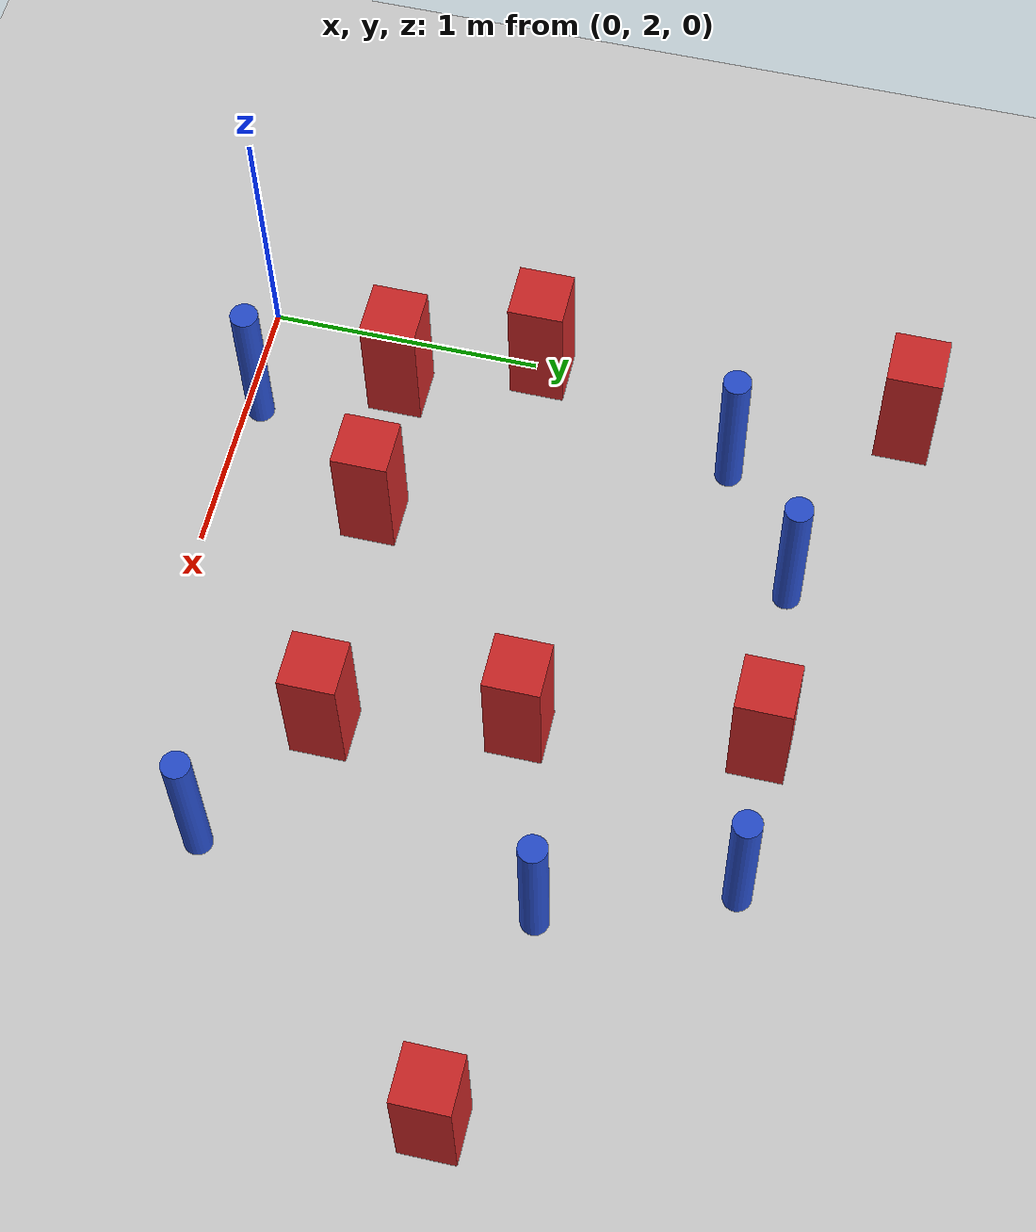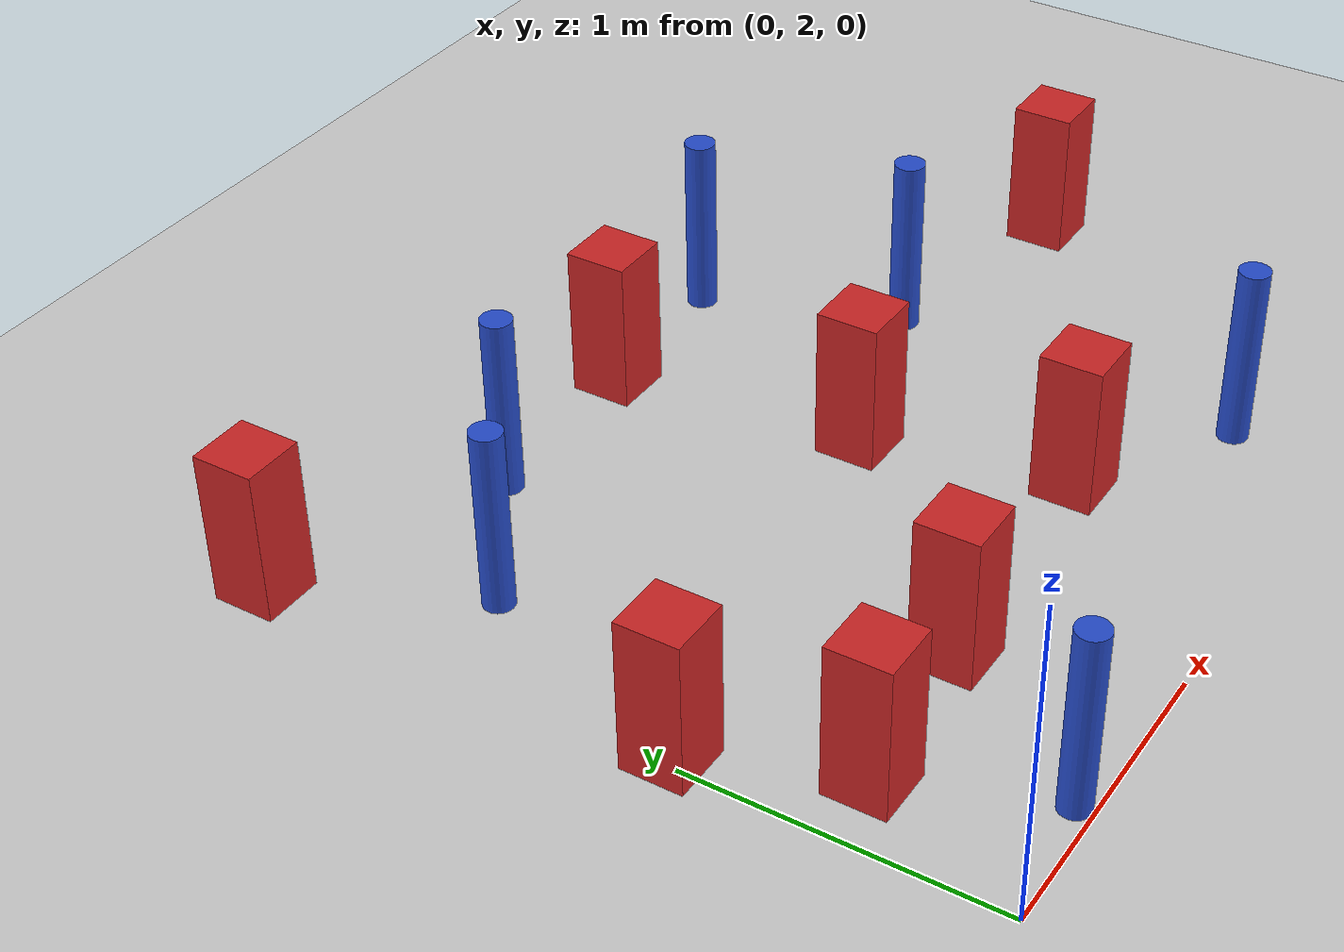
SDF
<sdf version="1.6">
 <world name="default">
  <model name="ground_plane">
   <static>1</static>
   <link name="link">
    <collision name="collision">
     <geometry><plane><normal>0 0 1</normal><size>100 100</size></plane></geometry>
     <surface><friction><ode><mu>100</mu><mu2>50</mu2></ode></friction></surface>
    </collision>
    <visual name="visual">
     <cast_shadows>0</cast_shadows>
     <geometry><plane><normal>0 0 1</normal><size>100 100</size></plane></geometry>
     <material>
      <ambient>1.0 1.0 1.0 1.0</ambient>
      <diffuse>0.8 0.8 0.8 1.0</diffuse>
      <specular>0.01 0.01 0.01 1.000000</specular>
     </material>
    </visual>
   </link>
  </model>
  <model name="square_post_obstacle2">
   <static>true</static>
   <pose>0.2190282874 2.5391222892 8.22691968438e-08 7.2212513382e-06 -7.54495500217e-07 2.29674213826e-05</pose>
   <link name="link">
    <pose>0 0 0.25 0 -0 0</pose>
    <inertial>
     <mass>100</mass>
     <inertia>
      <ixx>0.166667</ixx>
      <ixy>0</ixy>
      <ixz>0</ixz>
      <iyy>0.166667</iyy>
      <iyz>0</iyz>
      <izz>0.166667</izz>
     </inertia>
    </inertial>
    <collision name="collision"><geometry><box><size>.2 .2 .5</size></box></geometry></collision>
    <visual name="visual">
     <geometry><box><size>.2 .2 .5</size></box></geometry>
     <material>
      <script><name>Gazebo/Red</name><uri>file://media/materials/scripts/gazebo.material</uri></script>
     </material>
    </visual>
   </link>
  </model>
  <model name="pole_obstacle17">
   <static>true</static>
   <pose>0.307623092809 3.79545921827 2.88873142074e-08 -9.90536689663e-09 4.60219948993e-07 -1.20965994959e-07</pose>
   <link name="link">
    <pose>0 0 0.3 0 -0 0</pose>
    <inertial>
     <mass>1</mass>
     <inertia><ixx>0.145833</ixx><ixy>0</ixy><ixz>0</ixz><iyy>0.145833</iyy><iyz>0</iyz><izz>0.125</izz></inertia>
    </inertial>
    <collision name="collision">
     <geometry><cylinder><radius>0.05</radius><length>.6</length></cylinder></geometry>
    </collision>
    <visual name="visual">
     <geometry><cylinder><radius>0.05</radius><length>.6</length></cylinder></geometry>
     <material>
      <script><name>Gazebo/Blue</name><uri>file://media/materials/scripts/gazebo.material</uri></script>
     </material>
    </visual>
   </link>
  </model>
  <model name="pole_obstacle36">
   <static>true</static>
   <pose>2.14085963307 2.33548667248 2.88873142074e-08 -9.90536690232e-09 4.6021994898e-07 -1.20965994968e-07</pose>
   <link name="link">
    <pose>0 0 0.3 0 -0 0</pose>
    <inertial>
     <mass>1</mass>
     <inertia><ixx>0.145833</ixx><ixy>0</ixy><ixz>0</ixz><iyy>0.145833</iyy><iyz>0</iyz><izz>0.125</izz></inertia>
    </inertial>
    <collision name="collision">
     <geometry><cylinder><radius>0.05</radius><length>.6</length></cylinder></geometry>
    </collision>
    <visual name="visual">
     <geometry><cylinder><radius>0.05</radius><length>.6</length></cylinder></geometry>
     <material>
      <script><name>Gazebo/Blue</name><uri>file://media/materials/scripts/gazebo.material</uri></script>
     </material>
    </visual>
   </link>
  </model>
  <model name="pole_obstacle43">
   <static>true</static>
   <pose>0.763622266469 4.09649743446 2.88873142074e-08 -9.90536689661e-09 4.60219948993e-07 -1.20965994957e-07</pose>
   <link name="link">
    <pose>0 0 0.3 0 -0 0</pose>
    <inertial>
     <mass>1</mass>
     <inertia><ixx>0.145833</ixx><ixy>0</ixy><ixz>0</ixz><iyy>0.145833</iyy><iyz>0</iyz><izz>0.125</izz></inertia>
    </inertial>
    <collision name="collision">
     <geometry><cylinder><radius>0.05</radius><length>.6</length></cylinder></geometry>
    </collision>
    <visual name="visual">
     <geometry><cylinder><radius>0.05</radius><length>.6</length></cylinder></geometry>
     <material>
      <script><name>Gazebo/Blue</name><uri>file://media/materials/scripts/gazebo.material</uri></script>
     </material>
    </visual>
   </link>
  </model>
  <model name="square_post_obstacle50">
   <static>true</static>
   <pose>0.771809701009 2.58434858836 8.22691968438e-08 7.2212513382e-06 -7.54495500217e-07 2.29674213826e-05</pose>
   <link name="link">
    <pose>0 0 0.25 0 -0 0</pose>
    <inertial>
     <mass>100</mass>
     <inertia>
      <ixx>0.166667</ixx>
      <ixy>0</ixy>
      <ixz>0</ixz>
      <iyy>0.166667</iyy>
      <iyz>0</iyz>
      <izz>0.166667</izz>
     </inertia>
    </inertial>
    <collision name="collision"><geometry><box><size>.2 .2 .5</size></box></geometry></collision>
    <visual name="visual">
     <geometry><box><size>.2 .2 .5</size></box></geometry>
     <material>
      <script><name>Gazebo/Red</name><uri>file://media/materials/scripts/gazebo.material</uri></script>
     </material>
    </visual>
   </link>
  </model>
  <model name="pole_obstacle76">
   <static>true</static>
   <pose>2.16894916394 3.50908128852 2.88873142074e-08 -9.90536690232e-09 4.6021994898e-07 -1.20965994968e-07</pose>
   <link name="link">
    <pose>0 0 0.3 0 -0 0</pose>
    <inertial>
     <mass>1</mass>
     <inertia><ixx>0.145833</ixx><ixy>0</ixy><ixz>0</ixz><iyy>0.145833</iyy><iyz>0</iyz><izz>0.125</izz></inertia>
    </inertial>
    <collision name="collision">
     <geometry><cylinder><radius>0.05</radius><length>.6</length></cylinder></geometry>
    </collision>
    <visual name="visual">
     <geometry><cylinder><radius>0.05</radius><length>.6</length></cylinder></geometry>
     <material>
      <script><name>Gazebo/Blue</name><uri>file://media/materials/scripts/gazebo.material</uri></script>
     </material>
    </visual>
   </link>
  </model>
  <model name="square_post_obstacle75">
   <static>true</static>
   <pose>0.0272648362497 3.03281981452 8.22691968438e-08 7.2212513382e-06 -7.54495500217e-07 2.29674213826e-05</pose>
   <link name="link">
    <pose>0 0 0.25 0 -0 0</pose>
    <inertial>
     <mass>100</mass>
     <inertia>
      <ixx>0.166667</ixx>
      <ixy>0</ixy>
      <ixz>0</ixz>
      <iyy>0.166667</iyy>
      <iyz>0</iyz>
      <izz>0.166667</izz>
     </inertia>
    </inertial>
    <collision name="collision"><geometry><box><size>.2 .2 .5</size></box></geometry></collision>
    <visual name="visual">
     <geometry><box><size>.2 .2 .5</size></box></geometry>
     <material>
      <script><name>Gazebo/Red</name><uri>file://media/materials/scripts/gazebo.material</uri></script>
     </material>
    </visual>
   </link>
  </model>
  <model name="pole_obstacle91">
   <static>true</static>
   <pose>1.9350457874 4.14826656379 2.88873142074e-08 -9.90536689852e-09 4.60219948989e-07 -1.2096599496e-07</pose>
   <link name="link">
    <pose>0 0 0.3 0 -0 0</pose>
    <inertial>
     <mass>1</mass>
     <inertia><ixx>0.145833</ixx><ixy>0</ixy><ixz>0</ixz><iyy>0.145833</iyy><iyz>0</iyz><izz>0.125</izz></inertia>
    </inertial>
    <collision name="collision">
     <geometry><cylinder><radius>0.05</radius><length>.6</length></cylinder></geometry>
    </collision>
    <visual name="visual">
     <geometry><cylinder><radius>0.05</radius><length>.6</length></cylinder></geometry>
     <material>
      <script><name>Gazebo/Blue</name><uri>file://media/materials/scripts/gazebo.material</uri></script>
     </material>
    </visual>
   </link>
  </model>
  <model name="square_post_obstacle110">
   <static>true</static>
   <pose>1.49745537469 3.29779844383 8.22691968438e-08 7.2212513382e-06 -7.54495500217e-07 2.29674213826e-05</pose>
   <link name="link">
    <pose>0 0 0.25 0 -0 0</pose>
    <inertial>
     <mass>100</mass>
     <inertia>
      <ixx>0.166667</ixx>
      <ixy>0</ixy>
      <ixz>0</ixz>
      <iyy>0.166667</iyy>
      <iyz>0</iyz>
      <izz>0.166667</izz>
     </inertia>
    </inertial>
    <collision name="collision"><geometry><box><size>.2 .2 .5</size></box></geometry></collision>
    <visual name="visual">
     <geometry><box><size>.2 .2 .5</size></box></geometry>
     <material>
      <script><name>Gazebo/Red</name><uri>file://media/materials/scripts/gazebo.material</uri></script>
     </material>
    </visual>
   </link>
  </model>
  <model name="square_post_obstacle121">
   <static>true</static>
   <pose>0.0058337687307 4.39274328257 8.22691968438e-08 7.2212513382e-06 -7.54495500217e-07 2.29674213826e-05</pose>
   <link name="link">
    <pose>0 0 0.25 0 -0 0</pose>
    <inertial>
     <mass>100</mass>
     <inertia>
      <ixx>0.166667</ixx>
      <ixy>0</ixy>
      <ixz>0</ixz>
      <iyy>0.166667</iyy>
      <iyz>0</iyz>
      <izz>0.166667</izz>
     </inertia>
    </inertial>
    <collision name="collision"><geometry><box><size>.2 .2 .5</size></box></geometry></collision>
    <visual name="visual">
     <geometry><box><size>.2 .2 .5</size></box></geometry>
     <material>
      <script><name>Gazebo/Red</name><uri>file://media/materials/scripts/gazebo.material</uri></script>
     </material>
    </visual>
   </link>
  </model>
  <model name="pole_obstacle150">
   <static>true</static>
   <pose>0.418255800796 2.05549087887 2.88873142074e-08 -9.90536689663e-09 4.60219948993e-07 -1.20965994959e-07</pose>
   <link name="link">
    <pose>0 0 0.3 0 -0 0</pose>
    <inertial>
     <mass>1</mass>
     <inertia><ixx>0.145833</ixx><ixy>0</ixy><ixz>0</ixz><iyy>0.145833</iyy><iyz>0</iyz><izz>0.125</izz></inertia>
    </inertial>
    <collision name="collision">
     <geometry><cylinder><radius>0.05</radius><length>.6</length></cylinder></geometry>
    </collision>
    <visual name="visual">
     <geometry><cylinder><radius>0.05</radius><length>.6</length></cylinder></geometry>
     <material>
      <script><name>Gazebo/Blue</name><uri>file://media/materials/scripts/gazebo.material</uri></script>
     </material>
    </visual>
   </link>
  </model>
  <model name="square_post_obstacle184">
   <static>true</static>
   <pose>1.64008756146 2.64107913585 8.22691968438e-08 7.2212513382e-06 -7.54495500217e-07 2.29674213826e-05</pose>
   <link name="link">
    <pose>0 0 0.25 0 -0 0</pose>
    <inertial>
     <mass>100</mass>
     <inertia>
      <ixx>0.166667</ixx>
      <ixy>0</ixy>
      <ixz>0</ixz>
      <iyy>0.166667</iyy>
      <iyz>0</iyz>
      <izz>0.166667</izz>
     </inertia>
    </inertial>
    <collision name="collision"><geometry><box><size>.2 .2 .5</size></box></geometry></collision>
    <visual name="visual">
     <geometry><box><size>.2 .2 .5</size></box></geometry>
     <material>
      <script><name>Gazebo/Red</name><uri>file://media/materials/scripts/gazebo.material</uri></script>
     </material>
    </visual>
   </link>
  </model>
  <model name="square_post_obstacle188">
   <static>true</static>
   <pose>1.38954900626 4.12025621831 8.22691968438e-08 7.2212513382e-06 -7.54495500217e-07 2.29674213826e-05</pose>
   <link name="link">
    <pose>0 0 0.25 0 -0 0</pose>
    <inertial>
     <mass>100</mass>
     <inertia>
      <ixx>0.166667</ixx>
      <ixy>0</ixy>
      <ixz>0</ixz>
      <iyy>0.166667</iyy>
      <iyz>0</iyz>
      <izz>0.166667</izz>
     </inertia>
    </inertial>
    <collision name="collision"><geometry><box><size>.2 .2 .5</size></box></geometry></collision>
    <visual name="visual">
     <geometry><box><size>.2 .2 .5</size></box></geometry>
     <material>
      <script><name>Gazebo/Red</name><uri>file://media/materials/scripts/gazebo.material</uri></script>
     </material>
    </visual>
   </link>
  </model>
  <model name="square_post_obstacle190">
   <static>true</static>
   <pose>2.9342111018 3.36138191709 8.22691968438e-08 7.2212513382e-06 -7.54495500217e-07 2.29674213826e-05</pose>
   <link name="link">
    <pose>0 0 0.25 0 -0 0</pose>
    <inertial>
     <mass>100</mass>
     <inertia>
      <ixx>0.166667</ixx>
      <ixy>0</ixy>
      <ixz>0</ixz>
      <iyy>0.166667</iyy>
      <iyz>0</iyz>
      <izz>0.166667</izz>
     </inertia>
    </inertial>
    <collision name="collision"><geometry><box><size>.2 .2 .5</size></box></geometry></collision>
    <visual name="visual">
     <geometry><box><size>.2 .2 .5</size></box></geometry>
     <material>
      <script><name>Gazebo/Red</name><uri>file://media/materials/scripts/gazebo.material</uri></script>
     </material>
    </visual>
   </link>
  </model>
 </world>
</sdf>
